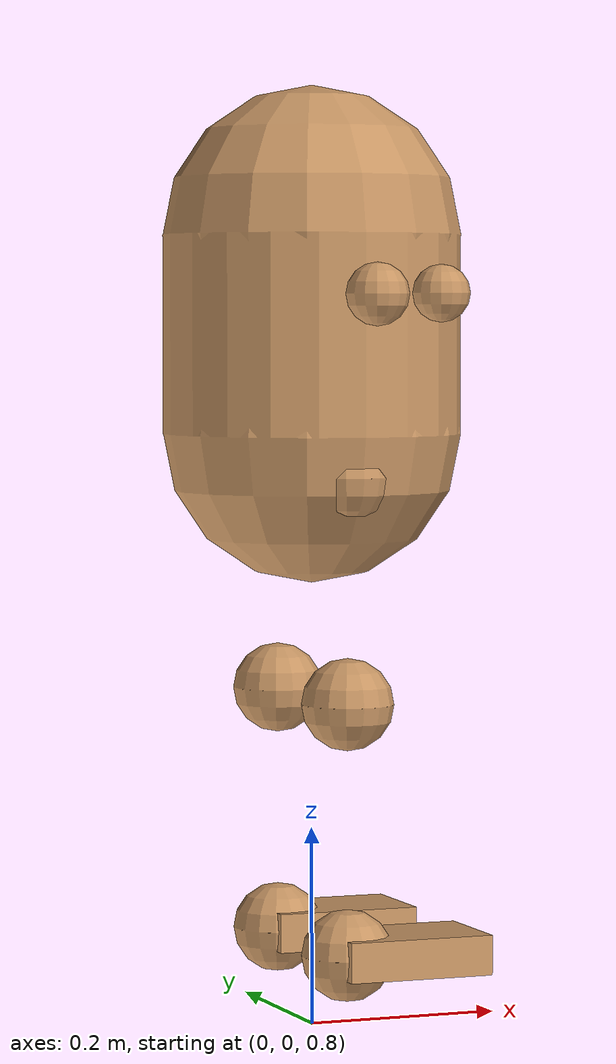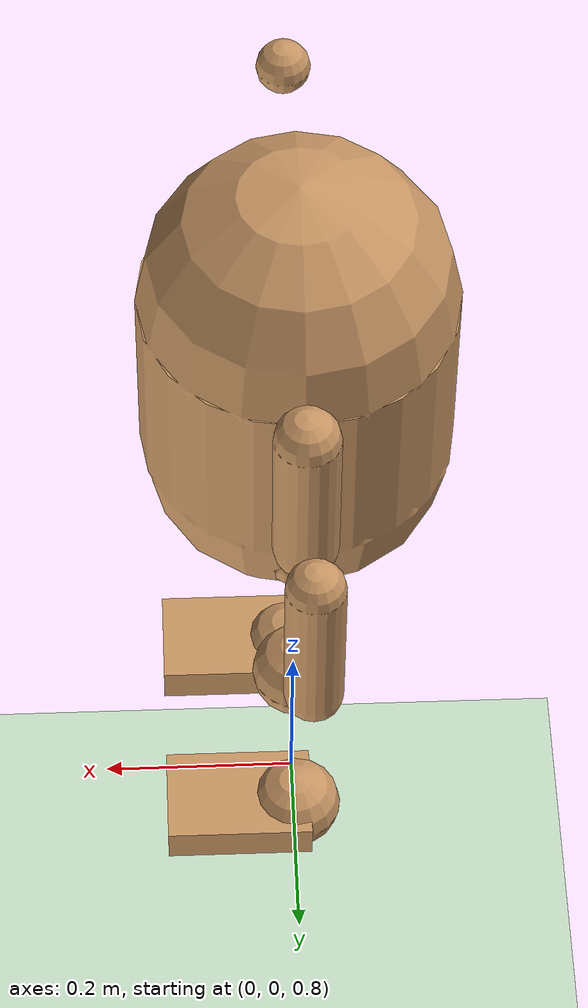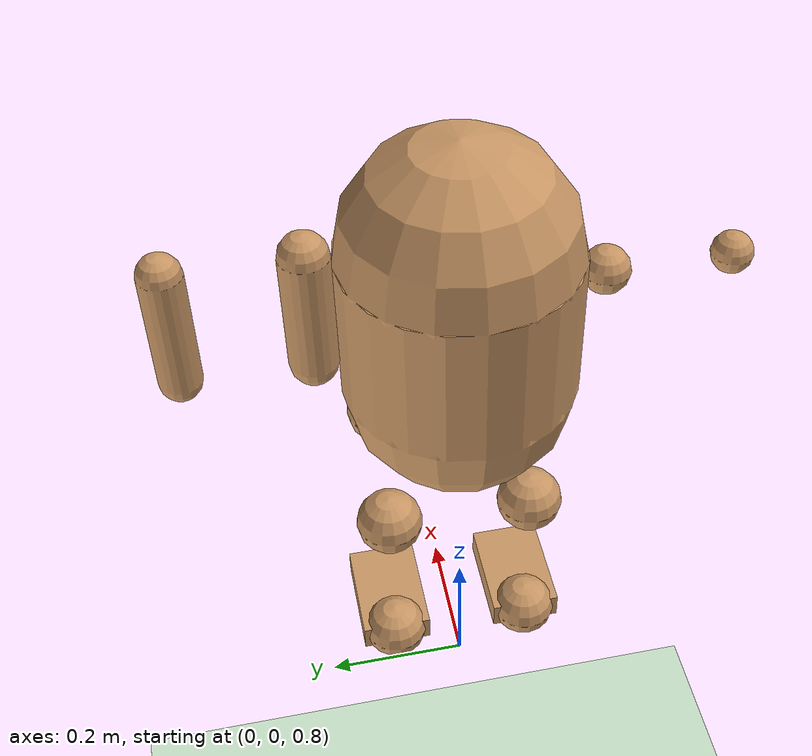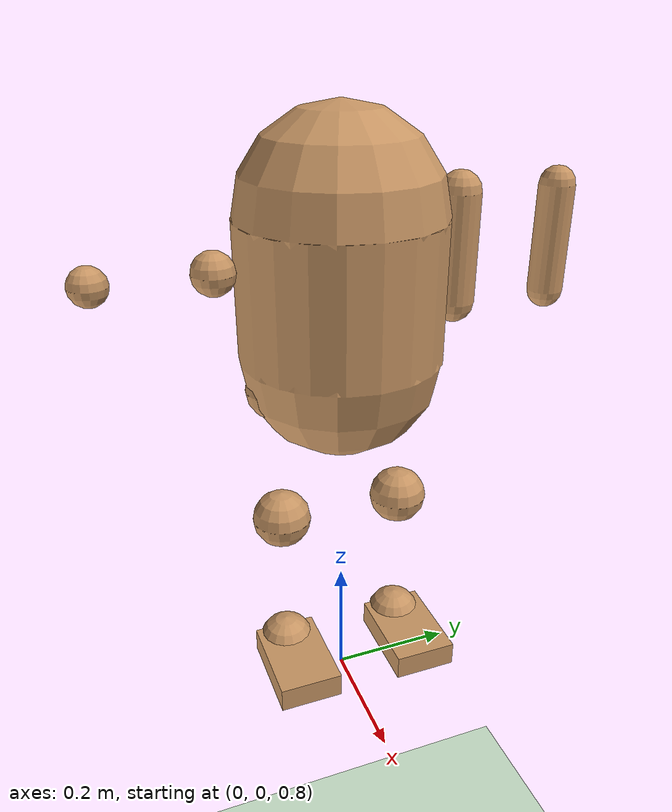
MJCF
<mujoco model="humanoid_squat">
  <compiler angle="radian" coordinate="local" inertiafromgeom="true"/>

  <default>
    <joint armature="1" damping="1" limited="true"/>
    <geom conaffinity="0" condim="3" density="5.0" friction="1 0.5 0.5" margin="0.01" rgba="0.8 0.6 0.4 1"/>
    <motor ctrllimited="true" ctrlrange="-1 1"/>
  </default>

  <asset>
    <texture builtin="gradient" height="100" rgb1="1 1 1" rgb2="0 0 0" type="skybox" width="100"/>
    <texture builtin="flat" height="1278" mark="cross" markrgb="1 1 1" name="texgeom" random="0.01" rgb1="0.8 0.6 0.4" rgb2="0.8 0.6 0.4" type="cube" width="127"/>
    <texture builtin="checker" height="100" name="texplane" rgb1="0 0 0" rgb2="0.8 0.8 0.8" type="2d" width="100"/>
    <material name="MatPlane" reflectance="0.5" shininess="1" specular="1" texrepeat="60 60" texture="texplane"/>
    <material name="geom" texture="texgeom" texuniform="true"/>
  </asset>

  <worldbody>
    <light cutoff="100" diffuse="1 1 1" dir="-0 0 -1.3" directional="true" exponent="1" pos="0 0 1.3" specular=".1 .1 .1"/>
    <geom conaffinity="1" condim="3" material="MatPlane" name="floor" pos="0 0 0" rgba="0.8 0.9 0.8 1" size="20 20 0.125" type="plane"/>

    <body name="torso" pos="0 0 1.4">
      <camera name="track" mode="trackcom" pos="0 -3 0.3" xyaxes="1 0 0 0 0 1"/>
      <geom name="torso1" pos="0 0 0.1" size="0.15 0.1" type="capsule"/>
      <geom name="head" pos="0 0 0.19" size="0.09" type="sphere"/>
      <geom name="uwaist" pos="0 0 0.01" size="0.06 0.05" type="capsule"/>
      <joint armature="0" damping="0" limited="false" margin="0.01" name="root" pos="0 0 0" type="free"/>

      <!-- Left arm -->
      <body name="larm" pos="0 0.18 0.14">
        <geom name="larm1" pos="0 0 0" size="0.031 0.08" type="capsule"/>
        <joint axis="2 1 1" name="larm" pos="0 0 0" range="0 0 0 0 0 0" type="ball"/>
        <body name="lforearm" pos="0 0.16 0">
          <geom name="lforearm" pos="0 0 0" size="0.027 0.08" type="capsule"/>
          <joint axis="0 0 1" name="lforearm" pos="0 0 0" range="-90 50" type="hinge"/>
        </body>
      </body>

      <!-- Right arm -->
      <body name="rarm" pos="0 -0.18 0.14">
        <geom name="rarm1" pos="0 0 0" size="0.031" type="capsule"/>
        <joint axis="2 -1 1" name="rarm" pos="0 0 0" range="-85 60" type="ball"/>
        <body name="rforearm" pos="0 -0.16 0">
          <geom name="rforearm" pos="0 0 0" size="0.027" type="capsule"/>
          <joint axis="0 0 1" name="rforearm" pos="0 0 0" range="-90 50" type="hinge"/>
        </body>
      </body>

      <!-- Left leg -->
      <body name="lhip" pos="0 0.1 -0.04">
        <geom name="lhip" pos="0 0 0" size="0.046" type="capsule"/>
        <joint axis="0 0 1" name="lhip_z" pos="0 0 0" range="-45 45" type="hinge"/>
        <joint axis="0 1 0" name="lhip_y" pos="0 0 0" range="-110 20" type="hinge"/>
        <joint axis="1 0 0" name="lhip_x" pos="0 0 0" range="-25 25" type="hinge"/>
        <body name="lthigh" pos="0 0 -0.225">
          <geom name="lthigh1" pos="0 0 0" size="0.046" type="capsule"/>
          <joint axis="0 1 0" name="lknee" pos="0 0 0.02" range="-160 -2" type="hinge"/>
          <body name="lshin" pos="0 0 -0.25">
            <geom name="lshin1" pos="0 0 0" size="0.046" type="capsule"/>
            <joint axis="0 1 0" name="lankle_y" pos="0 0 -0.1" range="-50 50" type="hinge"/>
            <body name="lfoot" pos="0 0 -0.1">
              <geom name="lfoot" pos="0.06 0 0.1" size="0.075 0.05 0.02" type="box"/>
            </body>
          </body>
        </body>
      </body>

      <!-- Right leg -->
      <body name="rhip" pos="0 -0.1 -0.04">
        <geom name="rhip" pos="0 0 0" size="0.046" type="capsule"/>
        <joint axis="0 0 1" name="rhip_z" pos="0 0 0" range="-45 45" type="hinge"/>
        <joint axis="0 1 0" name="rhip_y" pos="0 0 0" range="-110 20" type="hinge"/>
        <joint axis="1 0 0" name="rhip_x" pos="0 0 0" range="-25 25" type="hinge"/>
        <body name="rthigh" pos="0 0 -0.225">
          <geom name="rthigh1" pos="0 0 0" size="0.046" type="capsule"/>
          <joint axis="0 1 0" name="rknee" pos="0 0 0.02" range="-160 -2" type="hinge"/>
          <body name="rshin" pos="0 0 -0.25">
            <geom name="rshin1" pos="0 0 0" size="0.046" type="capsule"/>
            <joint axis="0 1 0" name="rankle_y" pos="0 0 -0.1" range="-50 50" type="hinge"/>
            <body name="rfoot" pos="0 0 -0.1">
              <geom name="rfoot" pos="0.06 0 0.1" size="0.075 0.05 0.02" type="box"/>
            </body>
          </body>
        </body>
      </body>
    </body>
  </worldbody>

  <actuator>
    <motor joint="lhip_z" name="lhip_z"/>
    <motor joint="lhip_y" name="lhip_y"/>
    <motor joint="lhip_x" name="lhip_x"/>
    <motor joint="lknee" name="lknee"/>
    <motor joint="lankle_y" name="lankle_y"/>
    <motor joint="rhip_z" name="rhip_z"/>
    <motor joint="rhip_y" name="rhip_y"/>
    <motor joint="rhip_x" name="rhip_x"/>
    <motor joint="rknee" name="rknee"/>
    <motor joint="rankle_y" name="rankle_y"/>
    <motor joint="larm" name="larm"/>
    <motor joint="lforearm" name="lforearm"/>
    <motor joint="rarm" name="rarm"/>
    <motor joint="rforearm" name="rforearm"/>
  </actuator>
</mujoco>
